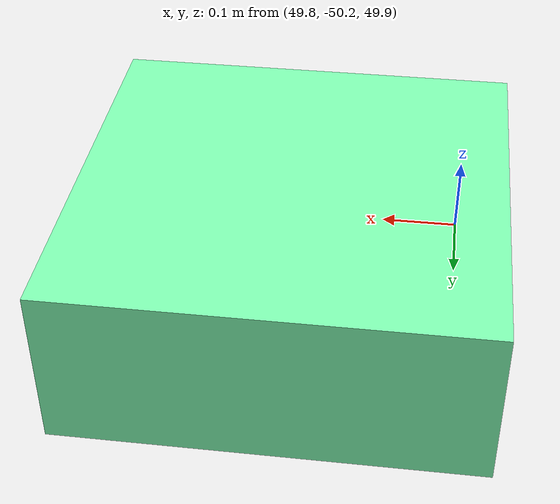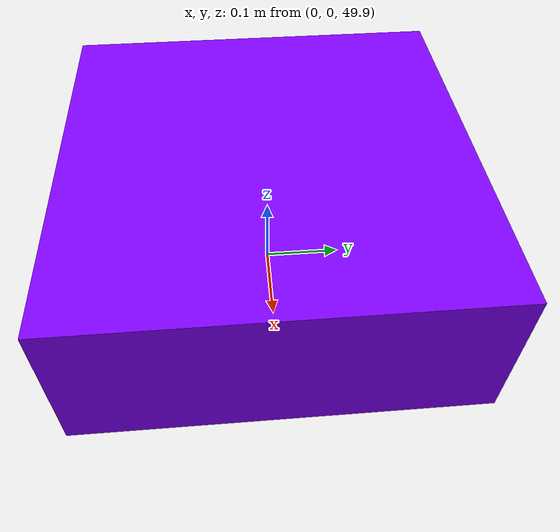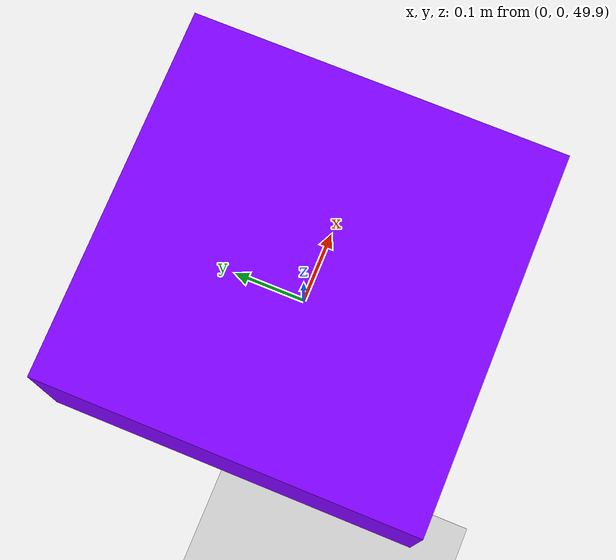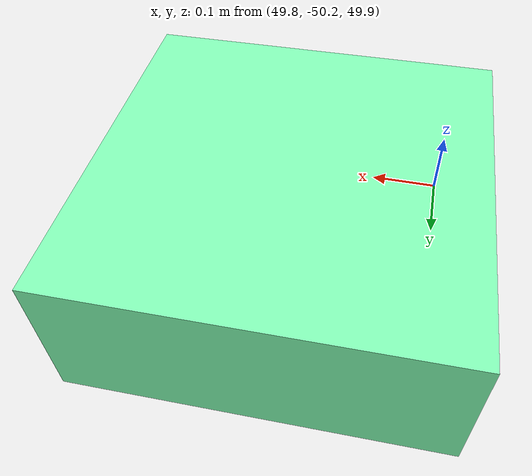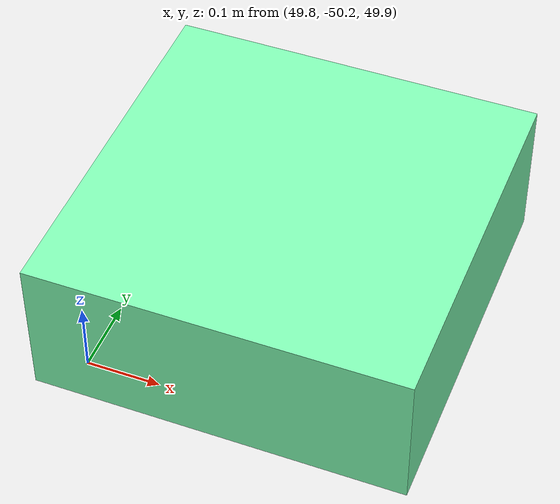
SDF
<?xml version='1.0' encoding='utf-8'?>
<sdf version="1.9">
  <world name="drone_traffic_world">
    <plugin filename="gz-sim-physics-system" name="gz::sim::systems::Physics" />
    <plugin filename="gz-sim-user-commands-system" name="gz::sim::systems::UserCommands" />
    <plugin filename="gz-sim-scene-broadcaster-system" name="gz::sim::systems::SceneBroadcaster" />
    <plugin filename="gz-sim-particle-emitter2-system" name="gz::sim::systems::ParticleEmitter2" />
    <physics name="1ms" type="ignored">
      <max_step_size>0.01</max_step_size>
      <real_time_factor>1.0</real_time_factor>
      <real_time_update_rate>100</real_time_update_rate>
    </physics>
    <light type="directional" name="sun">
      <cast_shadows>true</cast_shadows>
      <pose>0 0 10 0 0 0</pose>
      <diffuse>0.8 0.8 0.8 1</diffuse>
      <specular>0.2 0.2 0.2 1</specular>
      <attenuation>
        <range>1000</range>
        <constant>0.9</constant>
        <linear>0.01</linear>
        <quadratic>0.001</quadratic>
      </attenuation>
      <direction>-0.5 0.1 -0.9</direction>
    </light>
    <model name="ground_plane">
      <static>true</static>
      <link name="link">
        <collision name="collision">
          <geometry>
            <plane>
              <normal>0 0 1</normal>
              <size>500 500</size>
            </plane>
          </geometry>
        </collision>
        <visual name="visual">
          <geometry>
            <plane>
              <normal>0 0 1</normal>
              <size>500 500</size>
            </plane>
          </geometry>
          <material>
            <ambient>0.8 0.8 0.8 1</ambient>
            <diffuse>0.8 0.8 0.8 1</diffuse>
          </material>
        </visual>
      </link>
    </model>
    <model name="drone_TEMP_SAFE_1">
      <pose>1.1016497455536764e-16 0.0 50.0 0 0 0</pose>
      <link name="body">
        <visual name="visual">
          <geometry>
            <box>
              <size>0.5 0.5 0.2</size>
            </box>
          </geometry>
          <material>
            <ambient>0.5 0.0 1.0 1</ambient>
            <diffuse>0.5 0.0 1.0 1</diffuse>
          </material>
        </visual>
        <inertial>
          <mass>0.01</mass>
          <inertia>
            <ixx>0.001</ixx>
            <iyy>0.001</iyy>
            <izz>0.001</izz>
          </inertia>
        </inertial>
        <particle_emitter name="trail_emitter" type="box">
          <emitting>true</emitting>
          <size>0.1 0.1 0.1</size>
          <particle_size>0.1 0.1 0.1</particle_size>
          <lifetime>5.0</lifetime>
          <min_velocity>0.0</min_velocity>
          <max_velocity>0.0</max_velocity>
          <scale_rate>0</scale_rate>
          <rate>20</rate>
          <material>
            <diffuse>0 1 0 1</diffuse>
            <ambient>0 1 0 1</ambient>
          </material>
        </particle_emitter>
      </link>
      <plugin name="gazebo::TrajectoryPlayer" filename="trajectory_player_plugin">
        <position_file>/tmp/gazebo_drone_positions/drone_TEMP_SAFE_1.txt</position_file>
        <update_rate>30</update_rate>
      </plugin>
    </model>
    <model name="drone_TEMP_SAFE_2_DELAYED">
      <pose>50.0 -50.0 50.0 0 0 0</pose>
      <link name="body">
        <visual name="visual">
          <geometry>
            <box>
              <size>0.5 0.5 0.2</size>
            </box>
          </geometry>
          <material>
            <ambient>0.503921568627451 0.9999810273487268 0.7049255469061472 1</ambient>
            <diffuse>0.503921568627451 0.9999810273487268 0.7049255469061472 1</diffuse>
          </material>
        </visual>
        <inertial>
          <mass>0.01</mass>
          <inertia>
            <ixx>0.001</ixx>
            <iyy>0.001</iyy>
            <izz>0.001</izz>
          </inertia>
        </inertial>
        <particle_emitter name="trail_emitter" type="box">
          <emitting>true</emitting>
          <size>0.1 0.1 0.1</size>
          <particle_size>0.1 0.1 0.1</particle_size>
          <lifetime>5.0</lifetime>
          <min_velocity>0.0</min_velocity>
          <max_velocity>0.0</max_velocity>
          <scale_rate>0</scale_rate>
          <rate>20</rate>
          <material>
            <diffuse>0 1 0 1</diffuse>
            <ambient>0 1 0 1</ambient>
          </material>
        </particle_emitter>
      </link>
      <plugin name="gazebo::TrajectoryPlayer" filename="trajectory_player_plugin">
        <position_file>/tmp/gazebo_drone_positions/drone_TEMP_SAFE_2_DELAYED.txt</position_file>
        <update_rate>30</update_rate>
      </plugin>
    </model>
    <gui fullscreen="0">
      <camera name="user_camera">
        <pose>50.0 -105.0 110.0 0 0.6 1.57</pose>
        <view_controller>orbit</view_controller>
      </camera>
    </gui>
  </world>
</sdf>
